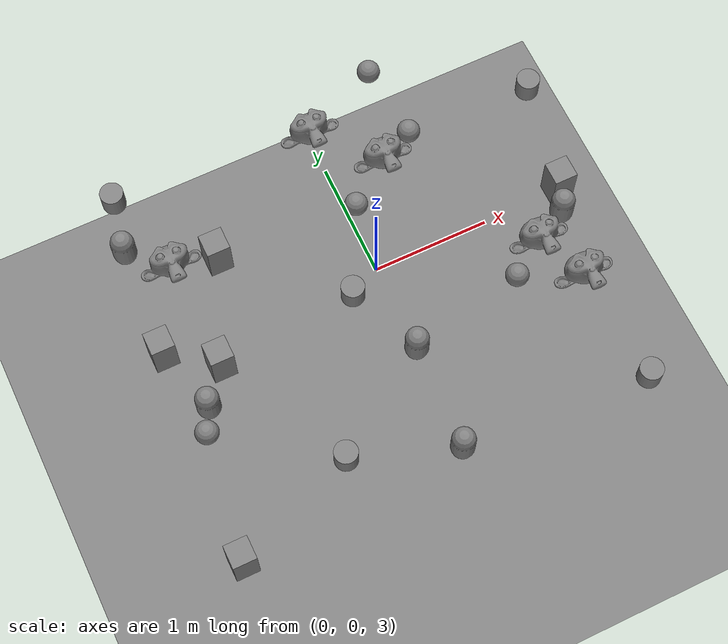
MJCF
<mujoco>
    <compiler angle="degree" coordinate="local" inertiafromgeom="true"/>
    <size nconmax="4000" njmax="10000"/>
    <statistic extent="2.000000" center="0.000000 0.000000 1.000000"/>
    <asset>
        <texture height="512" width="512" rgb1="0.300000 0.500000 0.700000" rgb2="0.000000 0.000000 0.000000" builtin="gradient" type="skybox"/>
        <texture height="512" width="512" markrgb="0.800000 0.800000 0.800000" rgb1="0.200000 0.300000 0.400000" rgb2="0.100000 0.150000 0.200000" builtin="checker" mark="cross" name="texplane" type="2d"/>
        <texture height="1278" width="127" random="0.010000" markrgb="1.000000 1.000000 1.000000" rgb1="0.800000 0.600000 0.400000" rgb2="0.800000 0.600000 0.400000" builtin="flat" mark="cross" name="texgeom" type="cube"/>
        <material reflectance="0.300000" texrepeat="1.000000 1.000000" name="matplane" texture="texplane" texuniform="true"/>
        <material rgba="0.800000 0.600000 0.400000 1.000000" name="matgeom" texture="texgeom" texuniform="true"/>
        <mesh scale="0.200000 0.200000 0.200000" file="/home/gregor/Documents/repos/tysoc_mujoco_workspace/tysoc_mujoco/core/res/meshes/monkey.stl" name="monkey"/>
    </asset>
    <visual>
        <map force="0.100000" zfar="30.000000"/>
        <rgba haze="0.150000 0.250000 0.350000 1.000000"/>
        <quality shadowsize="2048"/>
        <global offheight="800" offwidth="800"/>
    </visual>
    <worldbody>
        <geom conaffinity="1" contype="0" friction="0.700000 0.100000 0.100000" pos="0.000000 0.000000 -0.100000" quat="1.000000 0.000000 0.000000 0.000000" size="5.000000 5.000000 0.100000" name="tGen_terrainGen0_0" type="plane"/>
    </worldbody>
    <worldbody>
        <body pos="-1.473849 -0.165399 3.000000" quat="1.000000 0.000000 0.000000 0.000000" name="box_0">
            <freejoint name="box_0_jnt_free"/>
            <geom pos="0.000000 0.000000 0.000000" quat="1.000000 0.000000 0.000000 0.000000" size="0.100000 0.100000 0.200000" name="box_0_col_0" type="box"/>
        </body>
    </worldbody>
    <worldbody>
        <body pos="-1.124163 0.715459 3.000000" quat="1.000000 0.000000 0.000000 0.000000" name="box_1">
            <freejoint name="box_1_jnt_free"/>
            <geom pos="0.000000 0.000000 0.000000" quat="1.000000 0.000000 0.000000 0.000000" size="0.100000 0.100000 0.200000" name="box_1_col_0" type="box"/>
        </body>
    </worldbody>
    <worldbody>
        <body pos="1.738772 0.077665 3.000000" quat="1.000000 0.000000 0.000000 0.000000" name="box_2">
            <freejoint name="box_2_jnt_free"/>
            <geom pos="0.000000 0.000000 0.000000" quat="1.000000 0.000000 0.000000 0.000000" size="0.100000 0.100000 0.200000" name="box_2_col_0" type="box"/>
        </body>
    </worldbody>
    <worldbody>
        <body pos="-1.861712 0.118801 3.000000" quat="1.000000 0.000000 0.000000 0.000000" name="box_3">
            <freejoint name="box_3_jnt_free"/>
            <geom pos="0.000000 0.000000 0.000000" quat="1.000000 0.000000 0.000000 0.000000" size="0.100000 0.100000 0.200000" name="box_3_col_0" type="box"/>
        </body>
    </worldbody>
    <worldbody>
        <body pos="-1.969207 -1.732631 3.000000" quat="1.000000 0.000000 0.000000 0.000000" name="box_4">
            <freejoint name="box_4_jnt_free"/>
            <geom pos="0.000000 0.000000 0.000000" quat="1.000000 0.000000 0.000000 0.000000" size="0.100000 0.100000 0.200000" name="box_4_col_0" type="box"/>
        </body>
    </worldbody>
    <worldbody>
        <body pos="0.747091 1.721746 3.000000" quat="1.000000 0.000000 0.000000 0.000000" name="sphere_0">
            <freejoint name="sphere_0_jnt_free"/>
            <geom pos="0.000000 0.000000 0.000000" quat="1.000000 0.000000 0.000000 0.000000" size="0.100000 0.100000 0.100000" name="sphere_0_col_0" type="sphere"/>
        </body>
    </worldbody>
    <worldbody>
        <body pos="0.107715 0.615676 3.000000" quat="1.000000 0.000000 0.000000 0.000000" name="sphere_1">
            <freejoint name="sphere_1_jnt_free"/>
            <geom pos="0.000000 0.000000 0.000000" quat="1.000000 0.000000 0.000000 0.000000" size="0.100000 0.100000 0.100000" name="sphere_1_col_0" type="sphere"/>
        </body>
    </worldbody>
    <worldbody>
        <body pos="0.804762 1.048792 3.000000" quat="1.000000 0.000000 0.000000 0.000000" name="sphere_2">
            <freejoint name="sphere_2_jnt_free"/>
            <geom pos="0.000000 0.000000 0.000000" quat="1.000000 0.000000 0.000000 0.000000" size="0.100000 0.100000 0.100000" name="sphere_2_col_0" type="sphere"/>
        </body>
    </worldbody>
    <worldbody>
        <body pos="-1.810142 -0.687063 3.000000" quat="1.000000 0.000000 0.000000 0.000000" name="sphere_3">
            <freejoint name="sphere_3_jnt_free"/>
            <geom pos="0.000000 0.000000 0.000000" quat="1.000000 0.000000 0.000000 0.000000" size="0.100000 0.100000 0.100000" name="sphere_3_col_0" type="sphere"/>
        </body>
    </worldbody>
    <worldbody>
        <body pos="1.025642 -0.538645 3.000000" quat="1.000000 0.000000 0.000000 0.000000" name="sphere_4">
            <freejoint name="sphere_4_jnt_free"/>
            <geom pos="0.000000 0.000000 0.000000" quat="1.000000 0.000000 0.000000 0.000000" size="0.100000 0.100000 0.100000" name="sphere_4_col_0" type="sphere"/>
        </body>
    </worldbody>
    <worldbody>
        <body pos="1.930201 1.013423 3.000000" quat="1.000000 0.000000 0.000000 0.000000" name="cylinder_0">
            <freejoint name="cylinder_0_jnt_free"/>
            <geom pos="0.000000 0.000000 0.000000" quat="1.000000 0.000000 0.000000 0.000000" size="0.100000 0.100000 0.100000" name="cylinder_0_col_0" type="cylinder"/>
        </body>
    </worldbody>
    <worldbody>
        <body pos="-1.709256 1.538828 3.000000" quat="1.000000 0.000000 0.000000 0.000000" name="cylinder_1">
            <freejoint name="cylinder_1_jnt_free"/>
            <geom pos="0.000000 0.000000 0.000000" quat="1.000000 0.000000 0.000000 0.000000" size="0.100000 0.100000 0.100000" name="cylinder_1_col_0" type="cylinder"/>
        </body>
    </worldbody>
    <worldbody>
        <body pos="-0.254354 -0.089073 3.000000" quat="1.000000 0.000000 0.000000 0.000000" name="cylinder_2">
            <freejoint name="cylinder_2_jnt_free"/>
            <geom pos="0.000000 0.000000 0.000000" quat="1.000000 0.000000 0.000000 0.000000" size="0.100000 0.100000 0.100000" name="cylinder_2_col_0" type="cylinder"/>
        </body>
    </worldbody>
    <worldbody>
        <body pos="-0.900373 -1.333971 3.000000" quat="1.000000 0.000000 0.000000 0.000000" name="cylinder_3">
            <freejoint name="cylinder_3_jnt_free"/>
            <geom pos="0.000000 0.000000 0.000000" quat="1.000000 0.000000 0.000000 0.000000" size="0.100000 0.100000 0.100000" name="cylinder_3_col_0" type="cylinder"/>
        </body>
    </worldbody>
    <worldbody>
        <body pos="1.590625 -1.757743 3.000000" quat="1.000000 0.000000 0.000000 0.000000" name="cylinder_4">
            <freejoint name="cylinder_4_jnt_free"/>
            <geom pos="0.000000 0.000000 0.000000" quat="1.000000 0.000000 0.000000 0.000000" size="0.100000 0.100000 0.100000" name="cylinder_4_col_0" type="cylinder"/>
        </body>
    </worldbody>
    <worldbody>
        <body pos="0.018092 -0.723868 3.000000" quat="1.000000 0.000000 0.000000 0.000000" name="capsule_0">
            <freejoint name="capsule_0_jnt_free"/>
            <geom pos="0.000000 0.000000 0.000000" quat="1.000000 0.000000 0.000000 0.000000" size="0.100000 0.100000 0.100000" name="capsule_0_col_0" type="capsule"/>
        </body>
    </worldbody>
    <worldbody>
        <body pos="-0.024093 -1.637068 3.000000" quat="1.000000 0.000000 0.000000 0.000000" name="capsule_1">
            <freejoint name="capsule_1_jnt_free"/>
            <geom pos="0.000000 0.000000 0.000000" quat="1.000000 0.000000 0.000000 0.000000" size="0.100000 0.100000 0.100000" name="capsule_1_col_0" type="capsule"/>
        </body>
    </worldbody>
    <worldbody>
        <body pos="-1.705004 -0.463431 3.000000" quat="1.000000 0.000000 0.000000 0.000000" name="capsule_2">
            <freejoint name="capsule_2_jnt_free"/>
            <geom pos="0.000000 0.000000 0.000000" quat="1.000000 0.000000 0.000000 0.000000" size="0.100000 0.100000 0.100000" name="capsule_2_col_0" type="capsule"/>
        </body>
    </worldbody>
    <worldbody>
        <body pos="1.655270 -0.142217 3.000000" quat="1.000000 0.000000 0.000000 0.000000" name="capsule_3">
            <freejoint name="capsule_3_jnt_free"/>
            <geom pos="0.000000 0.000000 0.000000" quat="1.000000 0.000000 0.000000 0.000000" size="0.100000 0.100000 0.100000" name="capsule_3_col_0" type="capsule"/>
        </body>
    </worldbody>
    <worldbody>
        <body pos="-1.799664 1.080818 3.000000" quat="1.000000 0.000000 0.000000 0.000000" name="capsule_4">
            <freejoint name="capsule_4_jnt_free"/>
            <geom pos="0.000000 0.000000 0.000000" quat="1.000000 0.000000 0.000000 0.000000" size="0.100000 0.100000 0.100000" name="capsule_4_col_0" type="capsule"/>
        </body>
    </worldbody>
    <worldbody>
        <body pos="-1.498538 0.753821 3.000000" quat="1.000000 0.000000 0.000000 0.000000" name="mesh_0">
            <freejoint name="mesh_0_jnt_free"/>
            <geom pos="0.000000 0.000000 0.000000" quat="1.000000 0.000000 0.000000 0.000000" size="0.200000 0.200000 0.200000" mesh="monkey" name="mesh_0_col_0" type="mesh"/>
        </body>
    </worldbody>
    <worldbody>
        <body pos="0.518174 0.901648 3.000000" quat="1.000000 0.000000 0.000000 0.000000" name="mesh_1">
            <freejoint name="mesh_1_jnt_free"/>
            <geom pos="0.000000 0.000000 0.000000" quat="1.000000 0.000000 0.000000 0.000000" size="0.200000 0.200000 0.200000" mesh="monkey" name="mesh_1_col_0" type="mesh"/>
        </body>
    </worldbody>
    <worldbody>
        <body pos="1.554289 -0.774713 3.000000" quat="1.000000 0.000000 0.000000 0.000000" name="mesh_2">
            <freejoint name="mesh_2_jnt_free"/>
            <geom pos="0.000000 0.000000 0.000000" quat="1.000000 0.000000 0.000000 0.000000" size="0.200000 0.200000 0.200000" mesh="monkey" name="mesh_2_col_0" type="mesh"/>
        </body>
    </worldbody>
    <worldbody>
        <body pos="0.053095 1.383926 3.000000" quat="1.000000 0.000000 0.000000 0.000000" name="mesh_3">
            <freejoint name="mesh_3_jnt_free"/>
            <geom pos="0.000000 0.000000 0.000000" quat="1.000000 0.000000 0.000000 0.000000" size="0.200000 0.200000 0.200000" mesh="monkey" name="mesh_3_col_0" type="mesh"/>
        </body>
    </worldbody>
    <worldbody>
        <body pos="1.366043 -0.338422 3.000000" quat="1.000000 0.000000 0.000000 0.000000" name="mesh_4">
            <freejoint name="mesh_4_jnt_free"/>
            <geom pos="0.000000 0.000000 0.000000" quat="1.000000 0.000000 0.000000 0.000000" size="0.200000 0.200000 0.200000" mesh="monkey" name="mesh_4_col_0" type="mesh"/>
        </body>
    </worldbody>
</mujoco>
